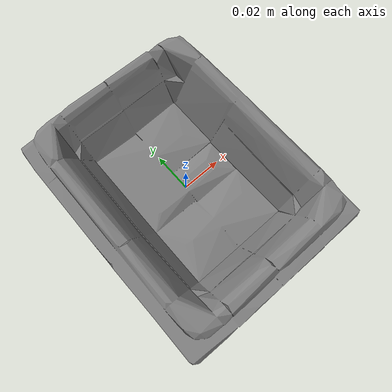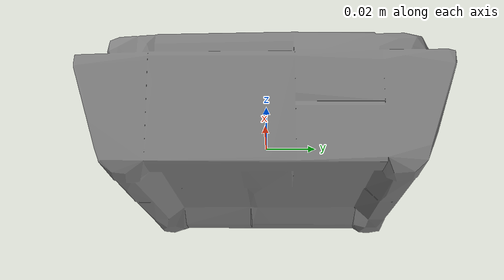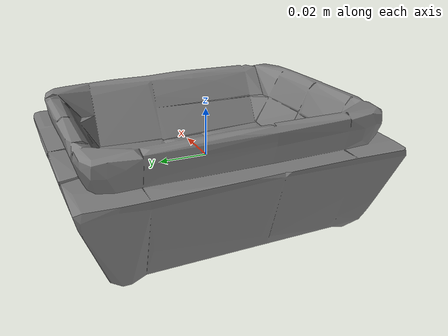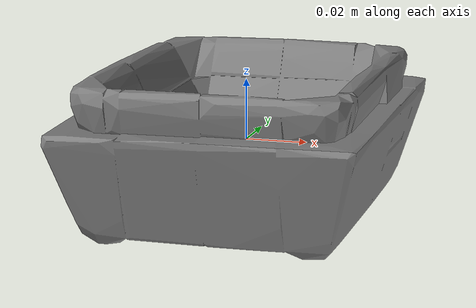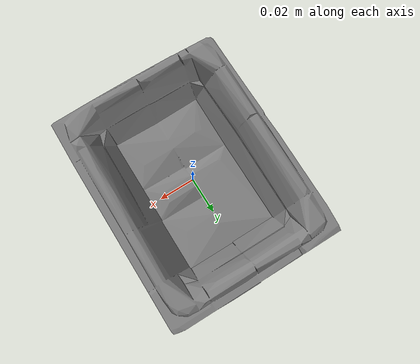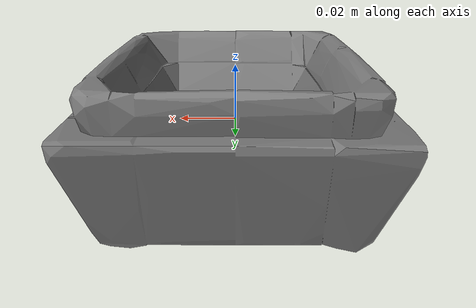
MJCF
<mujoco model="soap_dish_Threshold_Bamboo_Ceramic_Soap_Dish_M">
  <default>
    <default class="visual">
      <geom group="2" type="mesh" contype="0" conaffinity="0" />
    </default>
    <default class="collision">
      <geom group="3" type="mesh" />
    </default>
  </default>
  <asset>
    <mesh file="soap_dish_Threshold_Bamboo_Ceramic_Soap_Dish_M.stl" />
    <mesh file="soap_dish_Threshold_Bamboo_Ceramic_Soap_Dish_M_collision_0.stl" />
    <mesh file="soap_dish_Threshold_Bamboo_Ceramic_Soap_Dish_M_collision_1.stl" />
    <mesh file="soap_dish_Threshold_Bamboo_Ceramic_Soap_Dish_M_collision_2.stl" />
    <mesh file="soap_dish_Threshold_Bamboo_Ceramic_Soap_Dish_M_collision_3.stl" />
    <mesh file="soap_dish_Threshold_Bamboo_Ceramic_Soap_Dish_M_collision_4.stl" />
    <mesh file="soap_dish_Threshold_Bamboo_Ceramic_Soap_Dish_M_collision_5.stl" />
    <mesh file="soap_dish_Threshold_Bamboo_Ceramic_Soap_Dish_M_collision_6.stl" />
    <mesh file="soap_dish_Threshold_Bamboo_Ceramic_Soap_Dish_M_collision_7.stl" />
    <mesh file="soap_dish_Threshold_Bamboo_Ceramic_Soap_Dish_M_collision_8.stl" />
    <mesh file="soap_dish_Threshold_Bamboo_Ceramic_Soap_Dish_M_collision_9.stl" />
    <mesh file="soap_dish_Threshold_Bamboo_Ceramic_Soap_Dish_M_collision_10.stl" />
    <mesh file="soap_dish_Threshold_Bamboo_Ceramic_Soap_Dish_M_collision_11.stl" />
    <mesh file="soap_dish_Threshold_Bamboo_Ceramic_Soap_Dish_M_collision_12.stl" />
    <mesh file="soap_dish_Threshold_Bamboo_Ceramic_Soap_Dish_M_collision_13.stl" />
    <mesh file="soap_dish_Threshold_Bamboo_Ceramic_Soap_Dish_M_collision_14.stl" />
    <mesh file="soap_dish_Threshold_Bamboo_Ceramic_Soap_Dish_M_collision_15.stl" />
  </asset>
  <worldbody>
    <body name="soap_dish_Threshold_Bamboo_Ceramic_Soap_Dish_M">
      <geom mesh="soap_dish_Threshold_Bamboo_Ceramic_Soap_Dish_M" class="visual" />
      <geom mesh="soap_dish_Threshold_Bamboo_Ceramic_Soap_Dish_M_collision_0" class="collision" />
      <geom mesh="soap_dish_Threshold_Bamboo_Ceramic_Soap_Dish_M_collision_1" class="collision" />
      <geom mesh="soap_dish_Threshold_Bamboo_Ceramic_Soap_Dish_M_collision_2" class="collision" />
      <geom mesh="soap_dish_Threshold_Bamboo_Ceramic_Soap_Dish_M_collision_3" class="collision" />
      <geom mesh="soap_dish_Threshold_Bamboo_Ceramic_Soap_Dish_M_collision_4" class="collision" />
      <geom mesh="soap_dish_Threshold_Bamboo_Ceramic_Soap_Dish_M_collision_5" class="collision" />
      <geom mesh="soap_dish_Threshold_Bamboo_Ceramic_Soap_Dish_M_collision_6" class="collision" />
      <geom mesh="soap_dish_Threshold_Bamboo_Ceramic_Soap_Dish_M_collision_7" class="collision" />
      <geom mesh="soap_dish_Threshold_Bamboo_Ceramic_Soap_Dish_M_collision_8" class="collision" />
      <geom mesh="soap_dish_Threshold_Bamboo_Ceramic_Soap_Dish_M_collision_9" class="collision" />
      <geom mesh="soap_dish_Threshold_Bamboo_Ceramic_Soap_Dish_M_collision_10" class="collision" />
      <geom mesh="soap_dish_Threshold_Bamboo_Ceramic_Soap_Dish_M_collision_11" class="collision" />
      <geom mesh="soap_dish_Threshold_Bamboo_Ceramic_Soap_Dish_M_collision_12" class="collision" />
      <geom mesh="soap_dish_Threshold_Bamboo_Ceramic_Soap_Dish_M_collision_13" class="collision" />
      <geom mesh="soap_dish_Threshold_Bamboo_Ceramic_Soap_Dish_M_collision_14" class="collision" />
      <geom mesh="soap_dish_Threshold_Bamboo_Ceramic_Soap_Dish_M_collision_15" class="collision" />
    </body>
  </worldbody>
</mujoco>
